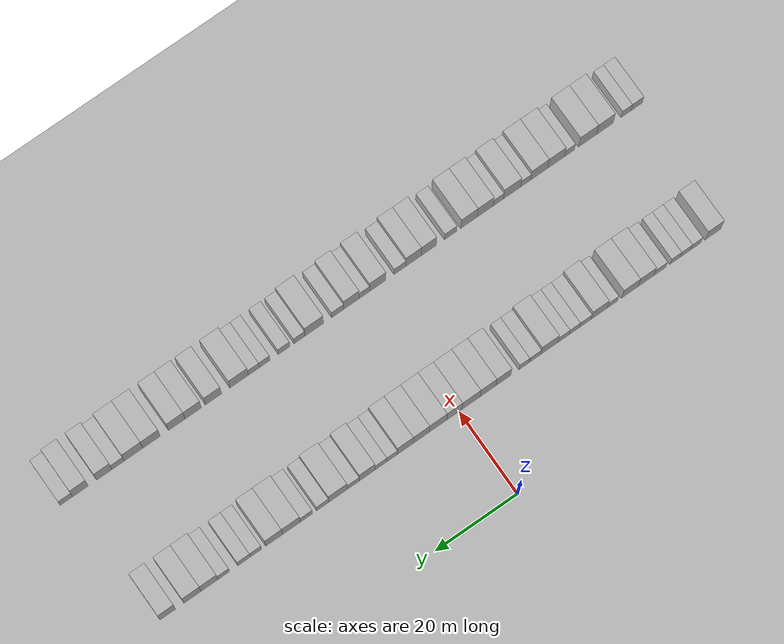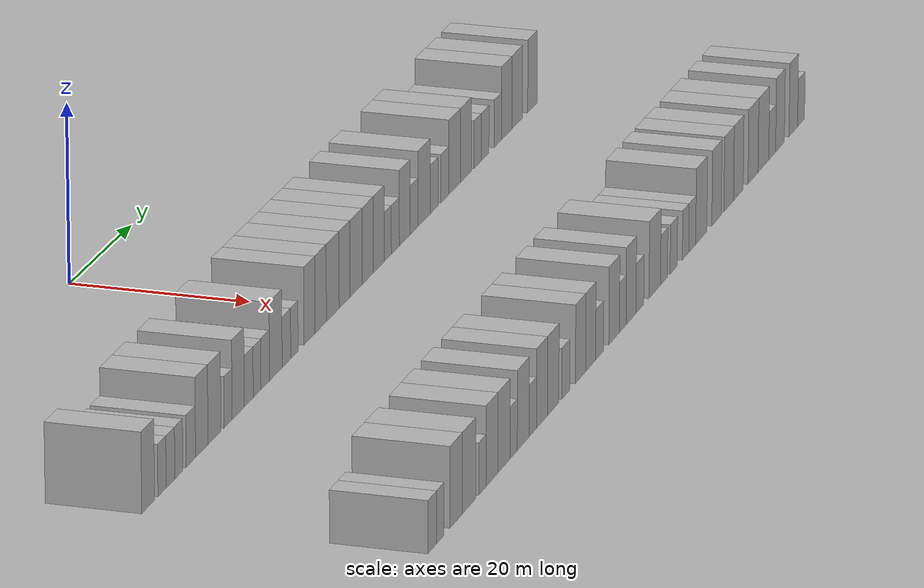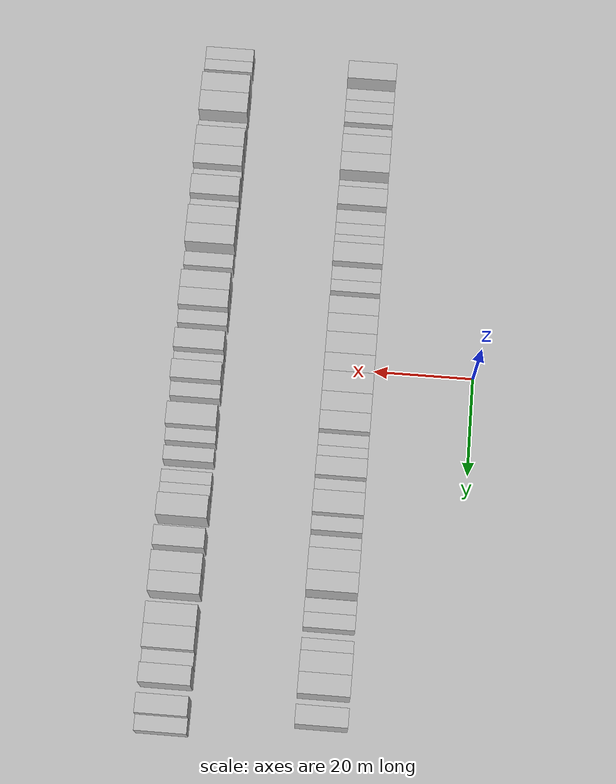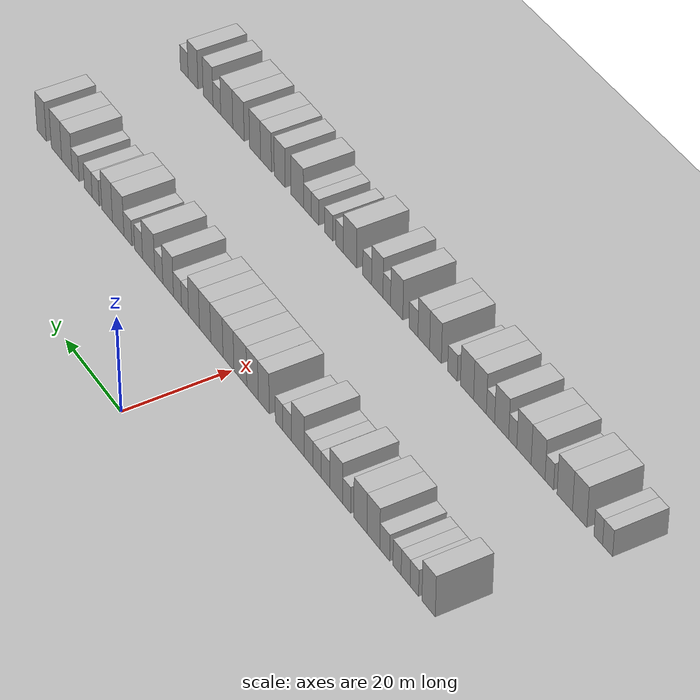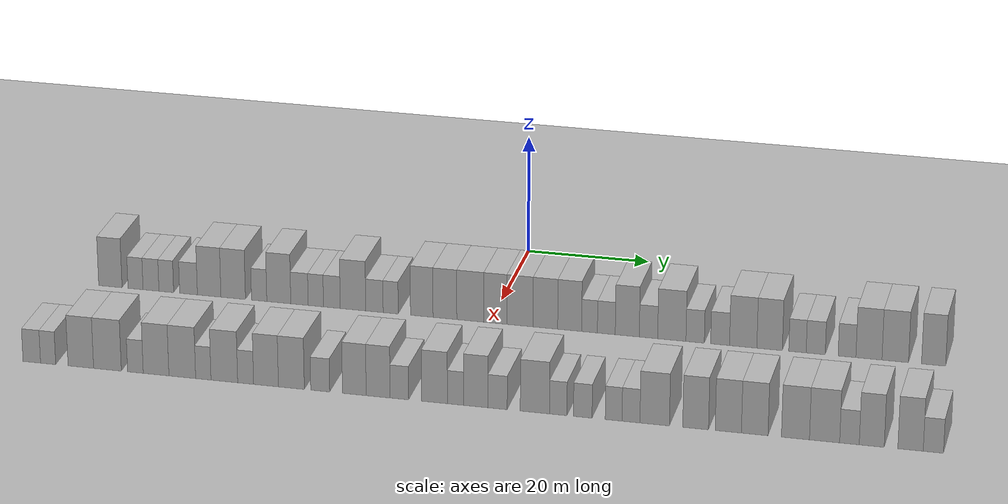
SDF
<sdf version="1.6">
 <world name="default">
  <include><name>ground_plane_1</name><uri>model://HANNAS_ground_plane</uri></include>
  <include>
   <name>ground_plane_2</name>
   <uri>model://HANNAS_ground_plane</uri>
   <pose>100 0 0  0 0 0</pose>
  </include>
  <model name="building_40">
   <static>1</static>
   <pose>25.0000 -62.1208 0 0.000000 0.000000 0.000000</pose>
   <link name="link">
    <pose>0 0 4.50 0 0 0</pose>
    <collision name="collision"><geometry><box><size>10.0000 3.9138 9.0000</size></box></geometry></collision>
    <visual name="visual">
     <cast_shadows>0</cast_shadows>
     <geometry><box><size>10.0000 3.9138 9.0000</size></box></geometry>
     <material>
      <script>
       <uri>model://HANNAS_wall/materials/scripts</uri>
       <uri>model://HANNAS_wall/materials/textures</uri>
       <name>vrc/HANNAS_wall</name>
      </script>
     </material>
    </visual>
   </link>
  </model>
  <model name="building_41">
   <static>1</static>
   <pose>25.0000 -57.9037 0 0.000000 0.000000 0.000000</pose>
   <link name="link">
    <pose>0 0 3.00 0 0 0</pose>
    <collision name="collision"><geometry><box><size>10.0000 2.5203 6.0000</size></box></geometry></collision>
    <visual name="visual">
     <cast_shadows>0</cast_shadows>
     <geometry><box><size>10.0000 2.5203 6.0000</size></box></geometry>
     <material>
      <script>
       <uri>model://HANNAS_wall/materials/scripts</uri>
       <uri>model://HANNAS_wall/materials/textures</uri>
       <name>vrc/HANNAS_wall</name>
      </script>
     </material>
    </visual>
   </link>
  </model>
  <model name="building_42">
   <static>1</static>
   <pose>25.0000 -55.3149 0 0.000000 0.000000 0.000000</pose>
   <link name="link">
    <pose>0 0 3.00 0 0 0</pose>
    <collision name="collision"><geometry><box><size>10.0000 2.6575 6.0000</size></box></geometry></collision>
    <visual name="visual">
     <cast_shadows>0</cast_shadows>
     <geometry><box><size>10.0000 2.6575 6.0000</size></box></geometry>
     <material>
      <script>
       <uri>model://HANNAS_wall/materials/scripts</uri>
       <uri>model://HANNAS_wall/materials/textures</uri>
       <name>vrc/HANNAS_wall</name>
      </script>
     </material>
    </visual>
   </link>
  </model>
  <model name="building_43">
   <static>1</static>
   <pose>25.0000 -52.7573 0 0.000000 0.000000 0.000000</pose>
   <link name="link">
    <pose>0 0 3.00 0 0 0</pose>
    <collision name="collision"><geometry><box><size>10.0000 2.4577 6.0000</size></box></geometry></collision>
    <visual name="visual">
     <cast_shadows>0</cast_shadows>
     <geometry><box><size>10.0000 2.4577 6.0000</size></box></geometry>
     <material>
      <script>
       <uri>model://HANNAS_wall/materials/scripts</uri>
       <uri>model://HANNAS_wall/materials/textures</uri>
       <name>vrc/HANNAS_wall</name>
      </script>
     </material>
    </visual>
   </link>
  </model>
  <model name="building_44">
   <static>1</static>
   <pose>25.0000 -49.0516 0 0.000000 0.000000 0.000000</pose>
   <link name="link">
    <pose>0 0 3.00 0 0 0</pose>
    <collision name="collision"><geometry><box><size>10.0000 2.9537 6.0000</size></box></geometry></collision>
    <visual name="visual">
     <cast_shadows>0</cast_shadows>
     <geometry><box><size>10.0000 2.9537 6.0000</size></box></geometry>
     <material>
      <script>
       <uri>model://HANNAS_wall/materials/scripts</uri>
       <uri>model://HANNAS_wall/materials/textures</uri>
       <name>vrc/HANNAS_wall</name>
      </script>
     </material>
    </visual>
   </link>
  </model>
  <model name="building_45">
   <static>1</static>
   <pose>25.0000 -45.6187 0 0.000000 0.000000 0.000000</pose>
   <link name="link">
    <pose>0 0 4.50 0 0 0</pose>
    <collision name="collision"><geometry><box><size>10.0000 3.9119 9.0000</size></box></geometry></collision>
    <visual name="visual">
     <cast_shadows>0</cast_shadows>
     <geometry><box><size>10.0000 3.9119 9.0000</size></box></geometry>
     <material>
      <script>
       <uri>model://HANNAS_wall/materials/scripts</uri>
       <uri>model://HANNAS_wall/materials/textures</uri>
       <name>vrc/HANNAS_wall</name>
      </script>
     </material>
    </visual>
   </link>
  </model>
  <model name="building_46">
   <static>1</static>
   <pose>25.0000 -41.6279 0 0.000000 0.000000 0.000000</pose>
   <link name="link">
    <pose>0 0 4.50 0 0 0</pose>
    <collision name="collision"><geometry><box><size>10.0000 4.0698 9.0000</size></box></geometry></collision>
    <visual name="visual">
     <cast_shadows>0</cast_shadows>
     <geometry><box><size>10.0000 4.0698 9.0000</size></box></geometry>
     <material>
      <script>
       <uri>model://HANNAS_wall/materials/scripts</uri>
       <uri>model://HANNAS_wall/materials/textures</uri>
       <name>vrc/HANNAS_wall</name>
      </script>
     </material>
    </visual>
   </link>
  </model>
  <model name="building_47">
   <static>1</static>
   <pose>25.0000 -37.3288 0 0.000000 0.000000 0.000000</pose>
   <link name="link">
    <pose>0 0 3.00 0 0 0</pose>
    <collision name="collision"><geometry><box><size>10.0000 2.5284 6.0000</size></box></geometry></collision>
    <visual name="visual">
     <cast_shadows>0</cast_shadows>
     <geometry><box><size>10.0000 2.5284 6.0000</size></box></geometry>
     <material>
      <script>
       <uri>model://HANNAS_wall/materials/scripts</uri>
       <uri>model://HANNAS_wall/materials/textures</uri>
       <name>vrc/HANNAS_wall</name>
      </script>
     </material>
    </visual>
   </link>
  </model>
  <model name="building_48">
   <static>1</static>
   <pose>25.0000 -34.0871 0 0.000000 0.000000 0.000000</pose>
   <link name="link">
    <pose>0 0 4.50 0 0 0</pose>
    <collision name="collision"><geometry><box><size>10.0000 3.9550 9.0000</size></box></geometry></collision>
    <visual name="visual">
     <cast_shadows>0</cast_shadows>
     <geometry><box><size>10.0000 3.9550 9.0000</size></box></geometry>
     <material>
      <script>
       <uri>model://HANNAS_wall/materials/scripts</uri>
       <uri>model://HANNAS_wall/materials/textures</uri>
       <name>vrc/HANNAS_wall</name>
      </script>
     </material>
    </visual>
   </link>
  </model>
  <model name="building_49">
   <static>1</static>
   <pose>25.0000 -30.6795 0 0.000000 0.000000 0.000000</pose>
   <link name="link">
    <pose>0 0 3.00 0 0 0</pose>
    <collision name="collision"><geometry><box><size>10.0000 2.8601 6.0000</size></box></geometry></collision>
    <visual name="visual">
     <cast_shadows>0</cast_shadows>
     <geometry><box><size>10.0000 2.8601 6.0000</size></box></geometry>
     <material>
      <script>
       <uri>model://HANNAS_wall/materials/scripts</uri>
       <uri>model://HANNAS_wall/materials/textures</uri>
       <name>vrc/HANNAS_wall</name>
      </script>
     </material>
    </visual>
   </link>
  </model>
  <model name="building_50">
   <static>1</static>
   <pose>25.0000 -27.9925 0 0.000000 0.000000 0.000000</pose>
   <link name="link">
    <pose>0 0 3.00 0 0 0</pose>
    <collision name="collision"><geometry><box><size>10.0000 2.5141 6.0000</size></box></geometry></collision>
    <visual name="visual">
     <cast_shadows>0</cast_shadows>
     <geometry><box><size>10.0000 2.5141 6.0000</size></box></geometry>
     <material>
      <script>
       <uri>model://HANNAS_wall/materials/scripts</uri>
       <uri>model://HANNAS_wall/materials/textures</uri>
       <name>vrc/HANNAS_wall</name>
      </script>
     </material>
    </visual>
   </link>
  </model>
  <model name="building_51">
   <static>1</static>
   <pose>25.0000 -25.3602 0 0.000000 0.000000 0.000000</pose>
   <link name="link">
    <pose>0 0 3.00 0 0 0</pose>
    <collision name="collision"><geometry><box><size>10.0000 2.7504 6.0000</size></box></geometry></collision>
    <visual name="visual">
     <cast_shadows>0</cast_shadows>
     <geometry><box><size>10.0000 2.7504 6.0000</size></box></geometry>
     <material>
      <script>
       <uri>model://HANNAS_wall/materials/scripts</uri>
       <uri>model://HANNAS_wall/materials/textures</uri>
       <name>vrc/HANNAS_wall</name>
      </script>
     </material>
    </visual>
   </link>
  </model>
  <model name="building_52">
   <static>1</static>
   <pose>25.0000 -21.8996 0 0.000000 0.000000 0.000000</pose>
   <link name="link">
    <pose>0 0 4.50 0 0 0</pose>
    <collision name="collision"><geometry><box><size>10.0000 4.1709 9.0000</size></box></geometry></collision>
    <visual name="visual">
     <cast_shadows>0</cast_shadows>
     <geometry><box><size>10.0000 4.1709 9.0000</size></box></geometry>
     <material>
      <script>
       <uri>model://HANNAS_wall/materials/scripts</uri>
       <uri>model://HANNAS_wall/materials/textures</uri>
       <name>vrc/HANNAS_wall</name>
      </script>
     </material>
    </visual>
   </link>
  </model>
  <model name="building_53">
   <static>1</static>
   <pose>25.0000 -18.3939 0 0.000000 0.000000 0.000000</pose>
   <link name="link">
    <pose>0 0 3.00 0 0 0</pose>
    <collision name="collision"><geometry><box><size>10.0000 2.8404 6.0000</size></box></geometry></collision>
    <visual name="visual">
     <cast_shadows>0</cast_shadows>
     <geometry><box><size>10.0000 2.8404 6.0000</size></box></geometry>
     <material>
      <script>
       <uri>model://HANNAS_wall/materials/scripts</uri>
       <uri>model://HANNAS_wall/materials/textures</uri>
       <name>vrc/HANNAS_wall</name>
      </script>
     </material>
    </visual>
   </link>
  </model>
  <model name="building_54">
   <static>1</static>
   <pose>25.0000 -15.7476 0 0.000000 0.000000 0.000000</pose>
   <link name="link">
    <pose>0 0 3.00 0 0 0</pose>
    <collision name="collision"><geometry><box><size>10.0000 2.4521 6.0000</size></box></geometry></collision>
    <visual name="visual">
     <cast_shadows>0</cast_shadows>
     <geometry><box><size>10.0000 2.4521 6.0000</size></box></geometry>
     <material>
      <script>
       <uri>model://HANNAS_wall/materials/scripts</uri>
       <uri>model://HANNAS_wall/materials/textures</uri>
       <name>vrc/HANNAS_wall</name>
      </script>
     </material>
    </visual>
   </link>
  </model>
  <model name="building_55">
   <static>1</static>
   <pose>25.0000 -10.6931 0 0.000000 0.000000 0.000000</pose>
   <link name="link">
    <pose>0 0 4.50 0 0 0</pose>
    <collision name="collision"><geometry><box><size>10.0000 3.6571 9.0000</size></box></geometry></collision>
    <visual name="visual">
     <cast_shadows>0</cast_shadows>
     <geometry><box><size>10.0000 3.6571 9.0000</size></box></geometry>
     <material>
      <script>
       <uri>model://HANNAS_wall/materials/scripts</uri>
       <uri>model://HANNAS_wall/materials/textures</uri>
       <name>vrc/HANNAS_wall</name>
      </script>
     </material>
    </visual>
   </link>
  </model>
  <model name="building_56">
   <static>1</static>
   <pose>25.0000 -6.9406 0 0.000000 0.000000 0.000000</pose>
   <link name="link">
    <pose>0 0 4.50 0 0 0</pose>
    <collision name="collision"><geometry><box><size>10.0000 3.8477 9.0000</size></box></geometry></collision>
    <visual name="visual">
     <cast_shadows>0</cast_shadows>
     <geometry><box><size>10.0000 3.8477 9.0000</size></box></geometry>
     <material>
      <script>
       <uri>model://HANNAS_wall/materials/scripts</uri>
       <uri>model://HANNAS_wall/materials/textures</uri>
       <name>vrc/HANNAS_wall</name>
      </script>
     </material>
    </visual>
   </link>
  </model>
  <model name="building_57">
   <static>1</static>
   <pose>25.0000 -2.8340 0 0.000000 0.000000 0.000000</pose>
   <link name="link">
    <pose>0 0 4.50 0 0 0</pose>
    <collision name="collision"><geometry><box><size>10.0000 4.3655 9.0000</size></box></geometry></collision>
    <visual name="visual">
     <cast_shadows>0</cast_shadows>
     <geometry><box><size>10.0000 4.3655 9.0000</size></box></geometry>
     <material>
      <script>
       <uri>model://HANNAS_wall/materials/scripts</uri>
       <uri>model://HANNAS_wall/materials/textures</uri>
       <name>vrc/HANNAS_wall</name>
      </script>
     </material>
    </visual>
   </link>
  </model>
  <model name="building_58">
   <static>1</static>
   <pose>25.0000 1.2045 0 0.000000 0.000000 0.000000</pose>
   <link name="link">
    <pose>0 0 4.50 0 0 0</pose>
    <collision name="collision"><geometry><box><size>10.0000 3.7116 9.0000</size></box></geometry></collision>
    <visual name="visual">
     <cast_shadows>0</cast_shadows>
     <geometry><box><size>10.0000 3.7116 9.0000</size></box></geometry>
     <material>
      <script>
       <uri>model://HANNAS_wall/materials/scripts</uri>
       <uri>model://HANNAS_wall/materials/textures</uri>
       <name>vrc/HANNAS_wall</name>
      </script>
     </material>
    </visual>
   </link>
  </model>
  <model name="building_59">
   <static>1</static>
   <pose>25.0000 5.1671 0 0.000000 0.000000 0.000000</pose>
   <link name="link">
    <pose>0 0 4.50 0 0 0</pose>
    <collision name="collision"><geometry><box><size>10.0000 4.2134 9.0000</size></box></geometry></collision>
    <visual name="visual">
     <cast_shadows>0</cast_shadows>
     <geometry><box><size>10.0000 4.2134 9.0000</size></box></geometry>
     <material>
      <script>
       <uri>model://HANNAS_wall/materials/scripts</uri>
       <uri>model://HANNAS_wall/materials/textures</uri>
       <name>vrc/HANNAS_wall</name>
      </script>
     </material>
    </visual>
   </link>
  </model>
  <model name="building_60">
   <static>1</static>
   <pose>25.0000 9.2439 0 0.000000 0.000000 0.000000</pose>
   <link name="link">
    <pose>0 0 4.50 0 0 0</pose>
    <collision name="collision"><geometry><box><size>10.0000 3.9403 9.0000</size></box></geometry></collision>
    <visual name="visual">
     <cast_shadows>0</cast_shadows>
     <geometry><box><size>10.0000 3.9403 9.0000</size></box></geometry>
     <material>
      <script>
       <uri>model://HANNAS_wall/materials/scripts</uri>
       <uri>model://HANNAS_wall/materials/textures</uri>
       <name>vrc/HANNAS_wall</name>
      </script>
     </material>
    </visual>
   </link>
  </model>
  <model name="building_61">
   <static>1</static>
   <pose>25.0000 13.1316 0 0.000000 0.000000 0.000000</pose>
   <link name="link">
    <pose>0 0 4.50 0 0 0</pose>
    <collision name="collision"><geometry><box><size>10.0000 3.8351 9.0000</size></box></geometry></collision>
    <visual name="visual">
     <cast_shadows>0</cast_shadows>
     <geometry><box><size>10.0000 3.8351 9.0000</size></box></geometry>
     <material>
      <script>
       <uri>model://HANNAS_wall/materials/scripts</uri>
       <uri>model://HANNAS_wall/materials/textures</uri>
       <name>vrc/HANNAS_wall</name>
      </script>
     </material>
    </visual>
   </link>
  </model>
  <model name="building_62">
   <static>1</static>
   <pose>25.0000 16.3027 0 0.000000 0.000000 0.000000</pose>
   <link name="link">
    <pose>0 0 3.00 0 0 0</pose>
    <collision name="collision"><geometry><box><size>10.0000 2.5070 6.0000</size></box></geometry></collision>
    <visual name="visual">
     <cast_shadows>0</cast_shadows>
     <geometry><box><size>10.0000 2.5070 6.0000</size></box></geometry>
     <material>
      <script>
       <uri>model://HANNAS_wall/materials/scripts</uri>
       <uri>model://HANNAS_wall/materials/textures</uri>
       <name>vrc/HANNAS_wall</name>
      </script>
     </material>
    </visual>
   </link>
  </model>
  <model name="building_63">
   <static>1</static>
   <pose>25.0000 18.9775 0 0.000000 0.000000 0.000000</pose>
   <link name="link">
    <pose>0 0 3.00 0 0 0</pose>
    <collision name="collision"><geometry><box><size>10.0000 2.8426 6.0000</size></box></geometry></collision>
    <visual name="visual">
     <cast_shadows>0</cast_shadows>
     <geometry><box><size>10.0000 2.8426 6.0000</size></box></geometry>
     <material>
      <script>
       <uri>model://HANNAS_wall/materials/scripts</uri>
       <uri>model://HANNAS_wall/materials/textures</uri>
       <name>vrc/HANNAS_wall</name>
      </script>
     </material>
    </visual>
   </link>
  </model>
  <model name="building_64">
   <static>1</static>
   <pose>25.0000 22.3060 0 0.000000 0.000000 0.000000</pose>
   <link name="link">
    <pose>0 0 4.50 0 0 0</pose>
    <collision name="collision"><geometry><box><size>10.0000 3.8143 9.0000</size></box></geometry></collision>
    <visual name="visual">
     <cast_shadows>0</cast_shadows>
     <geometry><box><size>10.0000 3.8143 9.0000</size></box></geometry>
     <material>
      <script>
       <uri>model://HANNAS_wall/materials/scripts</uri>
       <uri>model://HANNAS_wall/materials/textures</uri>
       <name>vrc/HANNAS_wall</name>
      </script>
     </material>
    </visual>
   </link>
  </model>
  <model name="building_65">
   <static>1</static>
   <pose>25.0000 25.6698 0 0.000000 0.000000 0.000000</pose>
   <link name="link">
    <pose>0 0 3.00 0 0 0</pose>
    <collision name="collision"><geometry><box><size>10.0000 2.9133 6.0000</size></box></geometry></collision>
    <visual name="visual">
     <cast_shadows>0</cast_shadows>
     <geometry><box><size>10.0000 2.9133 6.0000</size></box></geometry>
     <material>
      <script>
       <uri>model://HANNAS_wall/materials/scripts</uri>
       <uri>model://HANNAS_wall/materials/textures</uri>
       <name>vrc/HANNAS_wall</name>
      </script>
     </material>
    </visual>
   </link>
  </model>
  <model name="building_66">
   <static>1</static>
   <pose>25.0000 29.3603 0 0.000000 0.000000 0.000000</pose>
   <link name="link">
    <pose>0 0 4.50 0 0 0</pose>
    <collision name="collision"><geometry><box><size>10.0000 4.4676 9.0000</size></box></geometry></collision>
    <visual name="visual">
     <cast_shadows>0</cast_shadows>
     <geometry><box><size>10.0000 4.4676 9.0000</size></box></geometry>
     <material>
      <script>
       <uri>model://HANNAS_wall/materials/scripts</uri>
       <uri>model://HANNAS_wall/materials/textures</uri>
       <name>vrc/HANNAS_wall</name>
      </script>
     </material>
    </visual>
   </link>
  </model>
  <model name="building_67">
   <static>1</static>
   <pose>25.0000 33.0430 0 0.000000 0.000000 0.000000</pose>
   <link name="link">
    <pose>0 0 3.00 0 0 0</pose>
    <collision name="collision"><geometry><box><size>10.0000 2.8979 6.0000</size></box></geometry></collision>
    <visual name="visual">
     <cast_shadows>0</cast_shadows>
     <geometry><box><size>10.0000 2.8979 6.0000</size></box></geometry>
     <material>
      <script>
       <uri>model://HANNAS_wall/materials/scripts</uri>
       <uri>model://HANNAS_wall/materials/textures</uri>
       <name>vrc/HANNAS_wall</name>
      </script>
     </material>
    </visual>
   </link>
  </model>
  <model name="building_68">
   <static>1</static>
   <pose>25.0000 36.9722 0 0.000000 0.000000 0.000000</pose>
   <link name="link">
    <pose>0 0 3.00 0 0 0</pose>
    <collision name="collision"><geometry><box><size>10.0000 2.9604 6.0000</size></box></geometry></collision>
    <visual name="visual">
     <cast_shadows>0</cast_shadows>
     <geometry><box><size>10.0000 2.9604 6.0000</size></box></geometry>
     <material>
      <script>
       <uri>model://HANNAS_wall/materials/scripts</uri>
       <uri>model://HANNAS_wall/materials/textures</uri>
       <name>vrc/HANNAS_wall</name>
      </script>
     </material>
    </visual>
   </link>
  </model>
  <model name="building_69">
   <static>1</static>
   <pose>25.0000 40.5951 0 0.000000 0.000000 0.000000</pose>
   <link name="link">
    <pose>0 0 4.50 0 0 0</pose>
    <collision name="collision"><geometry><box><size>10.0000 4.2854 9.0000</size></box></geometry></collision>
    <visual name="visual">
     <cast_shadows>0</cast_shadows>
     <geometry><box><size>10.0000 4.2854 9.0000</size></box></geometry>
     <material>
      <script>
       <uri>model://HANNAS_wall/materials/scripts</uri>
       <uri>model://HANNAS_wall/materials/textures</uri>
       <name>vrc/HANNAS_wall</name>
      </script>
     </material>
    </visual>
   </link>
  </model>
  <model name="building_70">
   <static>1</static>
   <pose>25.0000 44.7319 0 0.000000 0.000000 0.000000</pose>
   <link name="link">
    <pose>0 0 4.50 0 0 0</pose>
    <collision name="collision"><geometry><box><size>10.0000 3.9883 9.0000</size></box></geometry></collision>
    <visual name="visual">
     <cast_shadows>0</cast_shadows>
     <geometry><box><size>10.0000 3.9883 9.0000</size></box></geometry>
     <material>
      <script>
       <uri>model://HANNAS_wall/materials/scripts</uri>
       <uri>model://HANNAS_wall/materials/textures</uri>
       <name>vrc/HANNAS_wall</name>
      </script>
     </material>
    </visual>
   </link>
  </model>
  <model name="building_71">
   <static>1</static>
   <pose>25.0000 49.0835 0 0.000000 0.000000 0.000000</pose>
   <link name="link">
    <pose>0 0 3.00 0 0 0</pose>
    <collision name="collision"><geometry><box><size>10.0000 2.7149 6.0000</size></box></geometry></collision>
    <visual name="visual">
     <cast_shadows>0</cast_shadows>
     <geometry><box><size>10.0000 2.7149 6.0000</size></box></geometry>
     <material>
      <script>
       <uri>model://HANNAS_wall/materials/scripts</uri>
       <uri>model://HANNAS_wall/materials/textures</uri>
       <name>vrc/HANNAS_wall</name>
      </script>
     </material>
    </visual>
   </link>
  </model>
  <model name="building_72">
   <static>1</static>
   <pose>25.0000 51.9279 0 0.000000 0.000000 0.000000</pose>
   <link name="link">
    <pose>0 0 3.00 0 0 0</pose>
    <collision name="collision"><geometry><box><size>10.0000 2.9739 6.0000</size></box></geometry></collision>
    <visual name="visual">
     <cast_shadows>0</cast_shadows>
     <geometry><box><size>10.0000 2.9739 6.0000</size></box></geometry>
     <material>
      <script>
       <uri>model://HANNAS_wall/materials/scripts</uri>
       <uri>model://HANNAS_wall/materials/textures</uri>
       <name>vrc/HANNAS_wall</name>
      </script>
     </material>
    </visual>
   </link>
  </model>
  <model name="building_73">
   <static>1</static>
   <pose>25.0000 56.7912 0 0.000000 0.000000 0.000000</pose>
   <link name="link">
    <pose>0 0 3.00 0 0 0</pose>
    <collision name="collision"><geometry><box><size>10.0000 2.7527 6.0000</size></box></geometry></collision>
    <visual name="visual">
     <cast_shadows>0</cast_shadows>
     <geometry><box><size>10.0000 2.7527 6.0000</size></box></geometry>
     <material>
      <script>
       <uri>model://HANNAS_wall/materials/scripts</uri>
       <uri>model://HANNAS_wall/materials/textures</uri>
       <name>vrc/HANNAS_wall</name>
      </script>
     </material>
    </visual>
   </link>
  </model>
  <model name="building_74">
   <static>1</static>
   <pose>25.0000 60.1852 0 0.000000 0.000000 0.000000</pose>
   <link name="link">
    <pose>0 0 4.50 0 0 0</pose>
    <collision name="collision"><geometry><box><size>10.0000 4.0353 9.0000</size></box></geometry></collision>
    <visual name="visual">
     <cast_shadows>0</cast_shadows>
     <geometry><box><size>10.0000 4.0353 9.0000</size></box></geometry>
     <material>
      <script>
       <uri>model://HANNAS_wall/materials/scripts</uri>
       <uri>model://HANNAS_wall/materials/textures</uri>
       <name>vrc/HANNAS_wall</name>
      </script>
     </material>
    </visual>
   </link>
  </model>
  <model name="building_75">
   <static>1</static>
   <pose>25.0000 64.2536 0 0.000000 0.000000 0.000000</pose>
   <link name="link">
    <pose>0 0 4.50 0 0 0</pose>
    <collision name="collision"><geometry><box><size>10.0000 4.1015 9.0000</size></box></geometry></collision>
    <visual name="visual">
     <cast_shadows>0</cast_shadows>
     <geometry><box><size>10.0000 4.1015 9.0000</size></box></geometry>
     <material>
      <script>
       <uri>model://HANNAS_wall/materials/scripts</uri>
       <uri>model://HANNAS_wall/materials/textures</uri>
       <name>vrc/HANNAS_wall</name>
      </script>
     </material>
    </visual>
   </link>
  </model>
  <model name="building_76">
   <static>1</static>
   <pose>25.0000 70.1558 0 0.000000 0.000000 0.000000</pose>
   <link name="link">
    <pose>0 0 4.50 0 0 0</pose>
    <collision name="collision"><geometry><box><size>10.0000 3.7029 9.0000</size></box></geometry></collision>
    <visual name="visual">
     <cast_shadows>0</cast_shadows>
     <geometry><box><size>10.0000 3.7029 9.0000</size></box></geometry>
     <material>
      <script>
       <uri>model://HANNAS_wall/materials/scripts</uri>
       <uri>model://HANNAS_wall/materials/textures</uri>
       <name>vrc/HANNAS_wall</name>
      </script>
     </material>
    </visual>
   </link>
  </model>
  <model name="building_145">
   <static>1</static>
   <pose>55.0000 -64.9765 0 0.000000 0.000000 0.000000</pose>
   <link name="link">
    <pose>0 0 3.00 0 0 0</pose>
    <collision name="collision"><geometry><box><size>10.0000 2.8246 6.0000</size></box></geometry></collision>
    <visual name="visual">
     <cast_shadows>0</cast_shadows>
     <geometry><box><size>10.0000 2.8246 6.0000</size></box></geometry>
     <material>
      <script>
       <uri>model://HANNAS_wall/materials/scripts</uri>
       <uri>model://HANNAS_wall/materials/textures</uri>
       <name>vrc/HANNAS_wall</name>
      </script>
     </material>
    </visual>
   </link>
  </model>
  <model name="building_146">
   <static>1</static>
   <pose>55.0000 -62.3438 0 0.000000 0.000000 0.000000</pose>
   <link name="link">
    <pose>0 0 3.00 0 0 0</pose>
    <collision name="collision"><geometry><box><size>10.0000 2.4408 6.0000</size></box></geometry></collision>
    <visual name="visual">
     <cast_shadows>0</cast_shadows>
     <geometry><box><size>10.0000 2.4408 6.0000</size></box></geometry>
     <material>
      <script>
       <uri>model://HANNAS_wall/materials/scripts</uri>
       <uri>model://HANNAS_wall/materials/textures</uri>
       <name>vrc/HANNAS_wall</name>
      </script>
     </material>
    </visual>
   </link>
  </model>
  <model name="building_147">
   <static>1</static>
   <pose>55.0000 -57.0720 0 0.000000 0.000000 0.000000</pose>
   <link name="link">
    <pose>0 0 4.50 0 0 0</pose>
    <collision name="collision"><geometry><box><size>10.0000 4.1026 9.0000</size></box></geometry></collision>
    <visual name="visual">
     <cast_shadows>0</cast_shadows>
     <geometry><box><size>10.0000 4.1026 9.0000</size></box></geometry>
     <material>
      <script>
       <uri>model://HANNAS_wall/materials/scripts</uri>
       <uri>model://HANNAS_wall/materials/textures</uri>
       <name>vrc/HANNAS_wall</name>
      </script>
     </material>
    </visual>
   </link>
  </model>
  <model name="building_148">
   <static>1</static>
   <pose>55.0000 -52.7976 0 0.000000 0.000000 0.000000</pose>
   <link name="link">
    <pose>0 0 4.50 0 0 0</pose>
    <collision name="collision"><geometry><box><size>10.0000 4.4462 9.0000</size></box></geometry></collision>
    <visual name="visual">
     <cast_shadows>0</cast_shadows>
     <geometry><box><size>10.0000 4.4462 9.0000</size></box></geometry>
     <material>
      <script>
       <uri>model://HANNAS_wall/materials/scripts</uri>
       <uri>model://HANNAS_wall/materials/textures</uri>
       <name>vrc/HANNAS_wall</name>
      </script>
     </material>
    </visual>
   </link>
  </model>
  <model name="building_149">
   <static>1</static>
   <pose>55.0000 -48.3259 0 0.000000 0.000000 0.000000</pose>
   <link name="link">
    <pose>0 0 3.00 0 0 0</pose>
    <collision name="collision"><geometry><box><size>10.0000 2.4974 6.0000</size></box></geometry></collision>
    <visual name="visual">
     <cast_shadows>0</cast_shadows>
     <geometry><box><size>10.0000 2.4974 6.0000</size></box></geometry>
     <material>
      <script>
       <uri>model://HANNAS_wall/materials/scripts</uri>
       <uri>model://HANNAS_wall/materials/textures</uri>
       <name>vrc/HANNAS_wall</name>
      </script>
     </material>
    </visual>
   </link>
  </model>
  <model name="building_150">
   <static>1</static>
   <pose>55.0000 -45.0313 0 0.000000 0.000000 0.000000</pose>
   <link name="link">
    <pose>0 0 4.50 0 0 0</pose>
    <collision name="collision"><geometry><box><size>10.0000 4.0917 9.0000</size></box></geometry></collision>
    <visual name="visual">
     <cast_shadows>0</cast_shadows>
     <geometry><box><size>10.0000 4.0917 9.0000</size></box></geometry>
     <material>
      <script>
       <uri>model://HANNAS_wall/materials/scripts</uri>
       <uri>model://HANNAS_wall/materials/textures</uri>
       <name>vrc/HANNAS_wall</name>
      </script>
     </material>
    </visual>
   </link>
  </model>
  <model name="building_151">
   <static>1</static>
   <pose>55.0000 -40.8586 0 0.000000 0.000000 0.000000</pose>
   <link name="link">
    <pose>0 0 4.50 0 0 0</pose>
    <collision name="collision"><geometry><box><size>10.0000 4.2538 9.0000</size></box></geometry></collision>
    <visual name="visual">
     <cast_shadows>0</cast_shadows>
     <geometry><box><size>10.0000 4.2538 9.0000</size></box></geometry>
     <material>
      <script>
       <uri>model://HANNAS_wall/materials/scripts</uri>
       <uri>model://HANNAS_wall/materials/textures</uri>
       <name>vrc/HANNAS_wall</name>
      </script>
     </material>
    </visual>
   </link>
  </model>
  <model name="building_152">
   <static>1</static>
   <pose>55.0000 -37.5166 0 0.000000 0.000000 0.000000</pose>
   <link name="link">
    <pose>0 0 3.00 0 0 0</pose>
    <collision name="collision"><geometry><box><size>10.0000 2.4303 6.0000</size></box></geometry></collision>
    <visual name="visual">
     <cast_shadows>0</cast_shadows>
     <geometry><box><size>10.0000 2.4303 6.0000</size></box></geometry>
     <material>
      <script>
       <uri>model://HANNAS_wall/materials/scripts</uri>
       <uri>model://HANNAS_wall/materials/textures</uri>
       <name>vrc/HANNAS_wall</name>
      </script>
     </material>
    </visual>
   </link>
  </model>
  <model name="building_153">
   <static>1</static>
   <pose>55.0000 -34.1890 0 0.000000 0.000000 0.000000</pose>
   <link name="link">
    <pose>0 0 4.50 0 0 0</pose>
    <collision name="collision"><geometry><box><size>10.0000 4.2249 9.0000</size></box></geometry></collision>
    <visual name="visual">
     <cast_shadows>0</cast_shadows>
     <geometry><box><size>10.0000 4.2249 9.0000</size></box></geometry>
     <material>
      <script>
       <uri>model://HANNAS_wall/materials/scripts</uri>
       <uri>model://HANNAS_wall/materials/textures</uri>
       <name>vrc/HANNAS_wall</name>
      </script>
     </material>
    </visual>
   </link>
  </model>
  <model name="building_154">
   <static>1</static>
   <pose>55.0000 -30.8187 0 0.000000 0.000000 0.000000</pose>
   <link name="link">
    <pose>0 0 3.00 0 0 0</pose>
    <collision name="collision"><geometry><box><size>10.0000 2.5157 6.0000</size></box></geometry></collision>
    <visual name="visual">
     <cast_shadows>0</cast_shadows>
     <geometry><box><size>10.0000 2.5157 6.0000</size></box></geometry>
     <material>
      <script>
       <uri>model://HANNAS_wall/materials/scripts</uri>
       <uri>model://HANNAS_wall/materials/textures</uri>
       <name>vrc/HANNAS_wall</name>
      </script>
     </material>
    </visual>
   </link>
  </model>
  <model name="building_155">
   <static>1</static>
   <pose>55.0000 -27.6068 0 0.000000 0.000000 0.000000</pose>
   <link name="link">
    <pose>0 0 4.50 0 0 0</pose>
    <collision name="collision"><geometry><box><size>10.0000 3.9082 9.0000</size></box></geometry></collision>
    <visual name="visual">
     <cast_shadows>0</cast_shadows>
     <geometry><box><size>10.0000 3.9082 9.0000</size></box></geometry>
     <material>
      <script>
       <uri>model://HANNAS_wall/materials/scripts</uri>
       <uri>model://HANNAS_wall/materials/textures</uri>
       <name>vrc/HANNAS_wall</name>
      </script>
     </material>
    </visual>
   </link>
  </model>
  <model name="building_156">
   <static>1</static>
   <pose>55.0000 -23.6167 0 0.000000 0.000000 0.000000</pose>
   <link name="link">
    <pose>0 0 4.50 0 0 0</pose>
    <collision name="collision"><geometry><box><size>10.0000 4.0719 9.0000</size></box></geometry></collision>
    <visual name="visual">
     <cast_shadows>0</cast_shadows>
     <geometry><box><size>10.0000 4.0719 9.0000</size></box></geometry>
     <material>
      <script>
       <uri>model://HANNAS_wall/materials/scripts</uri>
       <uri>model://HANNAS_wall/materials/textures</uri>
       <name>vrc/HANNAS_wall</name>
      </script>
     </material>
    </visual>
   </link>
  </model>
  <model name="building_157">
   <static>1</static>
   <pose>55.0000 -19.0972 0 0.000000 0.000000 0.000000</pose>
   <link name="link">
    <pose>0 0 3.00 0 0 0</pose>
    <collision name="collision"><geometry><box><size>10.0000 2.9671 6.0000</size></box></geometry></collision>
    <visual name="visual">
     <cast_shadows>0</cast_shadows>
     <geometry><box><size>10.0000 2.9671 6.0000</size></box></geometry>
     <material>
      <script>
       <uri>model://HANNAS_wall/materials/scripts</uri>
       <uri>model://HANNAS_wall/materials/textures</uri>
       <name>vrc/HANNAS_wall</name>
      </script>
     </material>
    </visual>
   </link>
  </model>
  <model name="building_158">
   <static>1</static>
   <pose>55.0000 -13.7635 0 0.000000 0.000000 0.000000</pose>
   <link name="link">
    <pose>0 0 4.50 0 0 0</pose>
    <collision name="collision"><geometry><box><size>10.0000 3.7003 9.0000</size></box></geometry></collision>
    <visual name="visual">
     <cast_shadows>0</cast_shadows>
     <geometry><box><size>10.0000 3.7003 9.0000</size></box></geometry>
     <material>
      <script>
       <uri>model://HANNAS_wall/materials/scripts</uri>
       <uri>model://HANNAS_wall/materials/textures</uri>
       <name>vrc/HANNAS_wall</name>
      </script>
     </material>
    </visual>
   </link>
  </model>
  <model name="building_159">
   <static>1</static>
   <pose>55.0000 -10.0526 0 0.000000 0.000000 0.000000</pose>
   <link name="link">
    <pose>0 0 4.50 0 0 0</pose>
    <collision name="collision"><geometry><box><size>10.0000 3.7215 9.0000</size></box></geometry></collision>
    <visual name="visual">
     <cast_shadows>0</cast_shadows>
     <geometry><box><size>10.0000 3.7215 9.0000</size></box></geometry>
     <material>
      <script>
       <uri>model://HANNAS_wall/materials/scripts</uri>
       <uri>model://HANNAS_wall/materials/textures</uri>
       <name>vrc/HANNAS_wall</name>
      </script>
     </material>
    </visual>
   </link>
  </model>
  <model name="building_160">
   <static>1</static>
   <pose>55.0000 -6.7533 0 0.000000 0.000000 0.000000</pose>
   <link name="link">
    <pose>0 0 3.00 0 0 0</pose>
    <collision name="collision"><geometry><box><size>10.0000 2.8772 6.0000</size></box></geometry></collision>
    <visual name="visual">
     <cast_shadows>0</cast_shadows>
     <geometry><box><size>10.0000 2.8772 6.0000</size></box></geometry>
     <material>
      <script>
       <uri>model://HANNAS_wall/materials/scripts</uri>
       <uri>model://HANNAS_wall/materials/textures</uri>
       <name>vrc/HANNAS_wall</name>
      </script>
     </material>
    </visual>
   </link>
  </model>
  <model name="building_161">
   <static>1</static>
   <pose>55.0000 -1.3154 0 0.000000 0.000000 0.000000</pose>
   <link name="link">
    <pose>0 0 4.50 0 0 0</pose>
    <collision name="collision"><geometry><box><size>10.0000 3.9986 9.0000</size></box></geometry></collision>
    <visual name="visual">
     <cast_shadows>0</cast_shadows>
     <geometry><box><size>10.0000 3.9986 9.0000</size></box></geometry>
     <material>
      <script>
       <uri>model://HANNAS_wall/materials/scripts</uri>
       <uri>model://HANNAS_wall/materials/textures</uri>
       <name>vrc/HANNAS_wall</name>
      </script>
     </material>
    </visual>
   </link>
  </model>
  <model name="building_162">
   <static>1</static>
   <pose>55.0000 1.9208 0 0.000000 0.000000 0.000000</pose>
   <link name="link">
    <pose>0 0 3.00 0 0 0</pose>
    <collision name="collision"><geometry><box><size>10.0000 2.4738 6.0000</size></box></geometry></collision>
    <visual name="visual">
     <cast_shadows>0</cast_shadows>
     <geometry><box><size>10.0000 2.4738 6.0000</size></box></geometry>
     <material>
      <script>
       <uri>model://HANNAS_wall/materials/scripts</uri>
       <uri>model://HANNAS_wall/materials/textures</uri>
       <name>vrc/HANNAS_wall</name>
      </script>
     </material>
    </visual>
   </link>
  </model>
  <model name="building_163">
   <static>1</static>
   <pose>55.0000 5.0517 0 0.000000 0.000000 0.000000</pose>
   <link name="link">
    <pose>0 0 4.50 0 0 0</pose>
    <collision name="collision"><geometry><box><size>10.0000 3.7880 9.0000</size></box></geometry></collision>
    <visual name="visual">
     <cast_shadows>0</cast_shadows>
     <geometry><box><size>10.0000 3.7880 9.0000</size></box></geometry>
     <material>
      <script>
       <uri>model://HANNAS_wall/materials/scripts</uri>
       <uri>model://HANNAS_wall/materials/textures</uri>
       <name>vrc/HANNAS_wall</name>
      </script>
     </material>
    </visual>
   </link>
  </model>
  <model name="building_164">
   <static>1</static>
   <pose>55.0000 8.4176 0 0.000000 0.000000 0.000000</pose>
   <link name="link">
    <pose>0 0 3.00 0 0 0</pose>
    <collision name="collision"><geometry><box><size>10.0000 2.9439 6.0000</size></box></geometry></collision>
    <visual name="visual">
     <cast_shadows>0</cast_shadows>
     <geometry><box><size>10.0000 2.9439 6.0000</size></box></geometry>
     <material>
      <script>
       <uri>model://HANNAS_wall/materials/scripts</uri>
       <uri>model://HANNAS_wall/materials/textures</uri>
       <name>vrc/HANNAS_wall</name>
      </script>
     </material>
    </visual>
   </link>
  </model>
  <model name="building_165">
   <static>1</static>
   <pose>55.0000 14.1337 0 0.000000 0.000000 0.000000</pose>
   <link name="link">
    <pose>0 0 4.50 0 0 0</pose>
    <collision name="collision"><geometry><box><size>10.0000 4.4883 9.0000</size></box></geometry></collision>
    <visual name="visual">
     <cast_shadows>0</cast_shadows>
     <geometry><box><size>10.0000 4.4883 9.0000</size></box></geometry>
     <material>
      <script>
       <uri>model://HANNAS_wall/materials/scripts</uri>
       <uri>model://HANNAS_wall/materials/textures</uri>
       <name>vrc/HANNAS_wall</name>
      </script>
     </material>
    </visual>
   </link>
  </model>
  <model name="building_166">
   <static>1</static>
   <pose>55.0000 17.7021 0 0.000000 0.000000 0.000000</pose>
   <link name="link">
    <pose>0 0 3.00 0 0 0</pose>
    <collision name="collision"><geometry><box><size>10.0000 2.6486 6.0000</size></box></geometry></collision>
    <visual name="visual">
     <cast_shadows>0</cast_shadows>
     <geometry><box><size>10.0000 2.6486 6.0000</size></box></geometry>
     <material>
      <script>
       <uri>model://HANNAS_wall/materials/scripts</uri>
       <uri>model://HANNAS_wall/materials/textures</uri>
       <name>vrc/HANNAS_wall</name>
      </script>
     </material>
    </visual>
   </link>
  </model>
  <model name="building_167">
   <static>1</static>
   <pose>55.0000 21.4353 0 0.000000 0.000000 0.000000</pose>
   <link name="link">
    <pose>0 0 3.00 0 0 0</pose>
    <collision name="collision"><geometry><box><size>10.0000 2.8177 6.0000</size></box></geometry></collision>
    <visual name="visual">
     <cast_shadows>0</cast_shadows>
     <geometry><box><size>10.0000 2.8177 6.0000</size></box></geometry>
     <material>
      <script>
       <uri>model://HANNAS_wall/materials/scripts</uri>
       <uri>model://HANNAS_wall/materials/textures</uri>
       <name>vrc/HANNAS_wall</name>
      </script>
     </material>
    </visual>
   </link>
  </model>
  <model name="building_168">
   <static>1</static>
   <pose>55.0000 26.1195 0 0.000000 0.000000 0.000000</pose>
   <link name="link">
    <pose>0 0 3.00 0 0 0</pose>
    <collision name="collision"><geometry><box><size>10.0000 2.5507 6.0000</size></box></geometry></collision>
    <visual name="visual">
     <cast_shadows>0</cast_shadows>
     <geometry><box><size>10.0000 2.5507 6.0000</size></box></geometry>
     <material>
      <script>
       <uri>model://HANNAS_wall/materials/scripts</uri>
       <uri>model://HANNAS_wall/materials/textures</uri>
       <name>vrc/HANNAS_wall</name>
      </script>
     </material>
    </visual>
   </link>
  </model>
  <model name="building_169">
   <static>1</static>
   <pose>55.0000 28.7498 0 0.000000 0.000000 0.000000</pose>
   <link name="link">
    <pose>0 0 3.00 0 0 0</pose>
    <collision name="collision"><geometry><box><size>10.0000 2.7100 6.0000</size></box></geometry></collision>
    <visual name="visual">
     <cast_shadows>0</cast_shadows>
     <geometry><box><size>10.0000 2.7100 6.0000</size></box></geometry>
     <material>
      <script>
       <uri>model://HANNAS_wall/materials/scripts</uri>
       <uri>model://HANNAS_wall/materials/textures</uri>
       <name>vrc/HANNAS_wall</name>
      </script>
     </material>
    </visual>
   </link>
  </model>
  <model name="building_170">
   <static>1</static>
   <pose>55.0000 32.3302 0 0.000000 0.000000 0.000000</pose>
   <link name="link">
    <pose>0 0 4.50 0 0 0</pose>
    <collision name="collision"><geometry><box><size>10.0000 4.4508 9.0000</size></box></geometry></collision>
    <visual name="visual">
     <cast_shadows>0</cast_shadows>
     <geometry><box><size>10.0000 4.4508 9.0000</size></box></geometry>
     <material>
      <script>
       <uri>model://HANNAS_wall/materials/scripts</uri>
       <uri>model://HANNAS_wall/materials/textures</uri>
       <name>vrc/HANNAS_wall</name>
      </script>
     </material>
    </visual>
   </link>
  </model>
  <model name="building_171">
   <static>1</static>
   <pose>55.0000 38.4957 0 0.000000 0.000000 0.000000</pose>
   <link name="link">
    <pose>0 0 4.50 0 0 0</pose>
    <collision name="collision"><geometry><box><size>10.0000 3.8801 9.0000</size></box></geometry></collision>
    <visual name="visual">
     <cast_shadows>0</cast_shadows>
     <geometry><box><size>10.0000 3.8801 9.0000</size></box></geometry>
     <material>
      <script>
       <uri>model://HANNAS_wall/materials/scripts</uri>
       <uri>model://HANNAS_wall/materials/textures</uri>
       <name>vrc/HANNAS_wall</name>
      </script>
     </material>
    </visual>
   </link>
  </model>
  <model name="building_172">
   <static>1</static>
   <pose>55.0000 43.3972 0 0.000000 0.000000 0.000000</pose>
   <link name="link">
    <pose>0 0 4.50 0 0 0</pose>
    <collision name="collision"><geometry><box><size>10.0000 3.9228 9.0000</size></box></geometry></collision>
    <visual name="visual">
     <cast_shadows>0</cast_shadows>
     <geometry><box><size>10.0000 3.9228 9.0000</size></box></geometry>
     <material>
      <script>
       <uri>model://HANNAS_wall/materials/scripts</uri>
       <uri>model://HANNAS_wall/materials/textures</uri>
       <name>vrc/HANNAS_wall</name>
      </script>
     </material>
    </visual>
   </link>
  </model>
  <model name="building_173">
   <static>1</static>
   <pose>55.0000 47.3480 0 0.000000 0.000000 0.000000</pose>
   <link name="link">
    <pose>0 0 4.50 0 0 0</pose>
    <collision name="collision"><geometry><box><size>10.0000 3.9789 9.0000</size></box></geometry></collision>
    <visual name="visual">
     <cast_shadows>0</cast_shadows>
     <geometry><box><size>10.0000 3.9789 9.0000</size></box></geometry>
     <material>
      <script>
       <uri>model://HANNAS_wall/materials/scripts</uri>
       <uri>model://HANNAS_wall/materials/textures</uri>
       <name>vrc/HANNAS_wall</name>
      </script>
     </material>
    </visual>
   </link>
  </model>
  <model name="building_174">
   <static>1</static>
   <pose>55.0000 53.4236 0 0.000000 0.000000 0.000000</pose>
   <link name="link">
    <pose>0 0 4.50 0 0 0</pose>
    <collision name="collision"><geometry><box><size>10.0000 4.1722 9.0000</size></box></geometry></collision>
    <visual name="visual">
     <cast_shadows>0</cast_shadows>
     <geometry><box><size>10.0000 4.1722 9.0000</size></box></geometry>
     <material>
      <script>
       <uri>model://HANNAS_wall/materials/scripts</uri>
       <uri>model://HANNAS_wall/materials/textures</uri>
       <name>vrc/HANNAS_wall</name>
      </script>
     </material>
    </visual>
   </link>
  </model>
  <model name="building_175">
   <static>1</static>
   <pose>55.0000 57.7500 0 0.000000 0.000000 0.000000</pose>
   <link name="link">
    <pose>0 0 4.50 0 0 0</pose>
    <collision name="collision"><geometry><box><size>10.0000 4.4807 9.0000</size></box></geometry></collision>
    <visual name="visual">
     <cast_shadows>0</cast_shadows>
     <geometry><box><size>10.0000 4.4807 9.0000</size></box></geometry>
     <material>
      <script>
       <uri>model://HANNAS_wall/materials/scripts</uri>
       <uri>model://HANNAS_wall/materials/textures</uri>
       <name>vrc/HANNAS_wall</name>
      </script>
     </material>
    </visual>
   </link>
  </model>
  <model name="building_176">
   <static>1</static>
   <pose>55.0000 61.4371 0 0.000000 0.000000 0.000000</pose>
   <link name="link">
    <pose>0 0 3.00 0 0 0</pose>
    <collision name="collision"><geometry><box><size>10.0000 2.8934 6.0000</size></box></geometry></collision>
    <visual name="visual">
     <cast_shadows>0</cast_shadows>
     <geometry><box><size>10.0000 2.8934 6.0000</size></box></geometry>
     <material>
      <script>
       <uri>model://HANNAS_wall/materials/scripts</uri>
       <uri>model://HANNAS_wall/materials/textures</uri>
       <name>vrc/HANNAS_wall</name>
      </script>
     </material>
    </visual>
   </link>
  </model>
  <model name="building_177">
   <static>1</static>
   <pose>55.0000 64.7285 0 0.000000 0.000000 0.000000</pose>
   <link name="link">
    <pose>0 0 4.50 0 0 0</pose>
    <collision name="collision"><geometry><box><size>10.0000 3.6894 9.0000</size></box></geometry></collision>
    <visual name="visual">
     <cast_shadows>0</cast_shadows>
     <geometry><box><size>10.0000 3.6894 9.0000</size></box></geometry>
     <material>
      <script>
       <uri>model://HANNAS_wall/materials/scripts</uri>
       <uri>model://HANNAS_wall/materials/textures</uri>
       <name>vrc/HANNAS_wall</name>
      </script>
     </material>
    </visual>
   </link>
  </model>
  <model name="building_178">
   <static>1</static>
   <pose>55.0000 70.4398 0 0.000000 0.000000 0.000000</pose>
   <link name="link">
    <pose>0 0 4.50 0 0 0</pose>
    <collision name="collision"><geometry><box><size>10.0000 3.7333 9.0000</size></box></geometry></collision>
    <visual name="visual">
     <cast_shadows>0</cast_shadows>
     <geometry><box><size>10.0000 3.7333 9.0000</size></box></geometry>
     <material>
      <script>
       <uri>model://HANNAS_wall/materials/scripts</uri>
       <uri>model://HANNAS_wall/materials/textures</uri>
       <name>vrc/HANNAS_wall</name>
      </script>
     </material>
    </visual>
   </link>
  </model>
  <model name="building_179">
   <static>1</static>
   <pose>55.0000 73.7914 0 0.000000 0.000000 0.000000</pose>
   <link name="link">
    <pose>0 0 3.00 0 0 0</pose>
    <collision name="collision"><geometry><box><size>10.0000 2.9697 6.0000</size></box></geometry></collision>
    <visual name="visual">
     <cast_shadows>0</cast_shadows>
     <geometry><box><size>10.0000 2.9697 6.0000</size></box></geometry>
     <material>
      <script>
       <uri>model://HANNAS_wall/materials/scripts</uri>
       <uri>model://HANNAS_wall/materials/textures</uri>
       <name>vrc/HANNAS_wall</name>
      </script>
     </material>
    </visual>
   </link>
  </model>
 </world>
</sdf>
